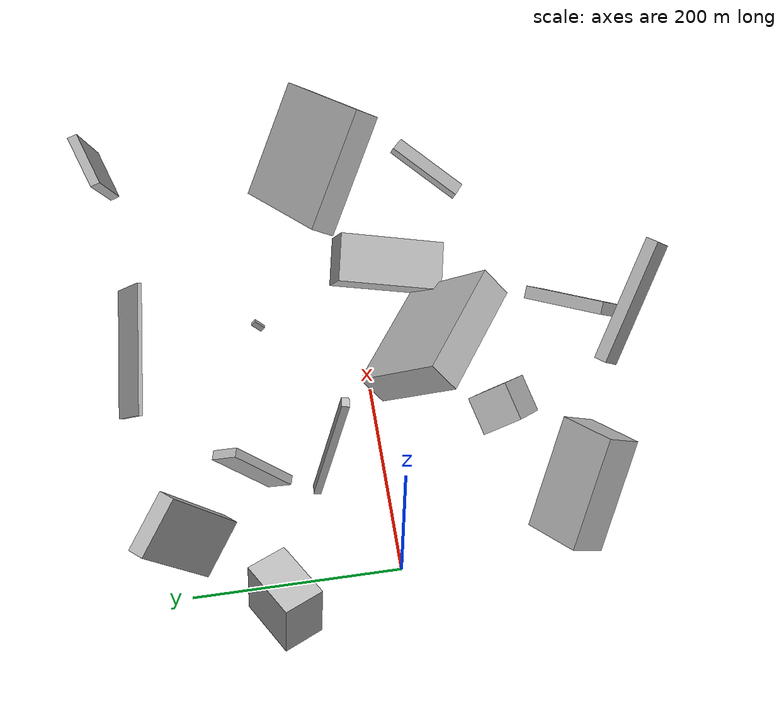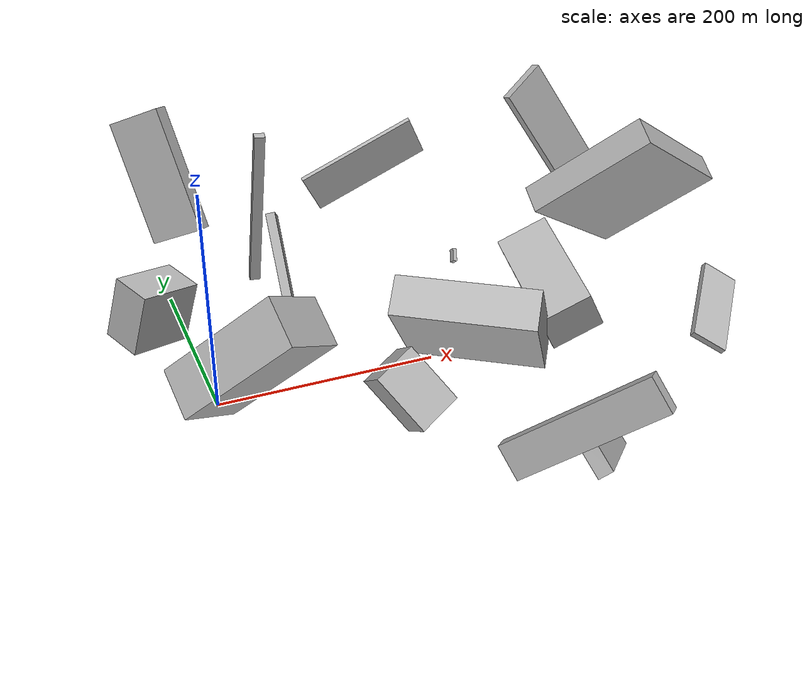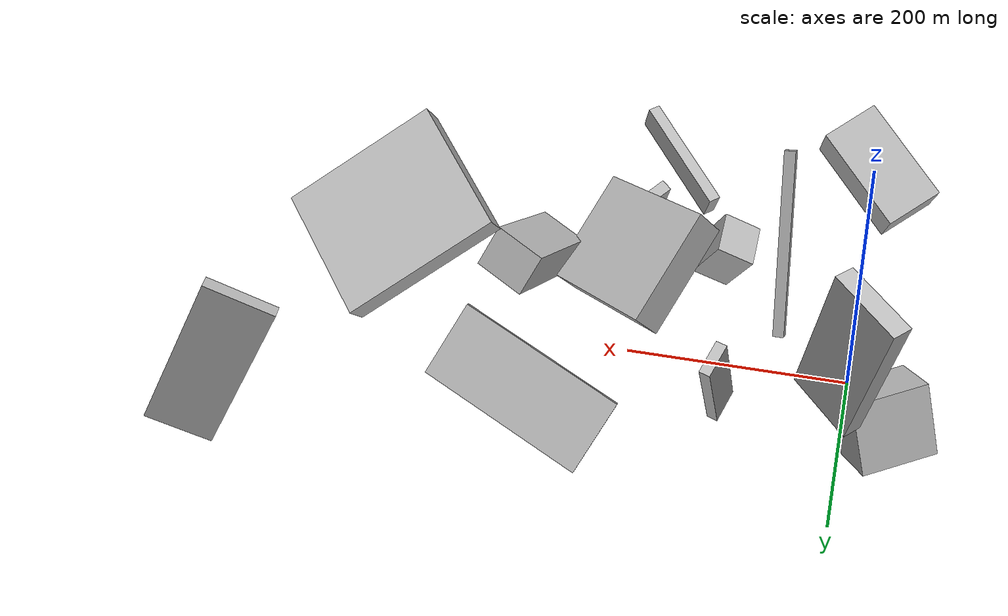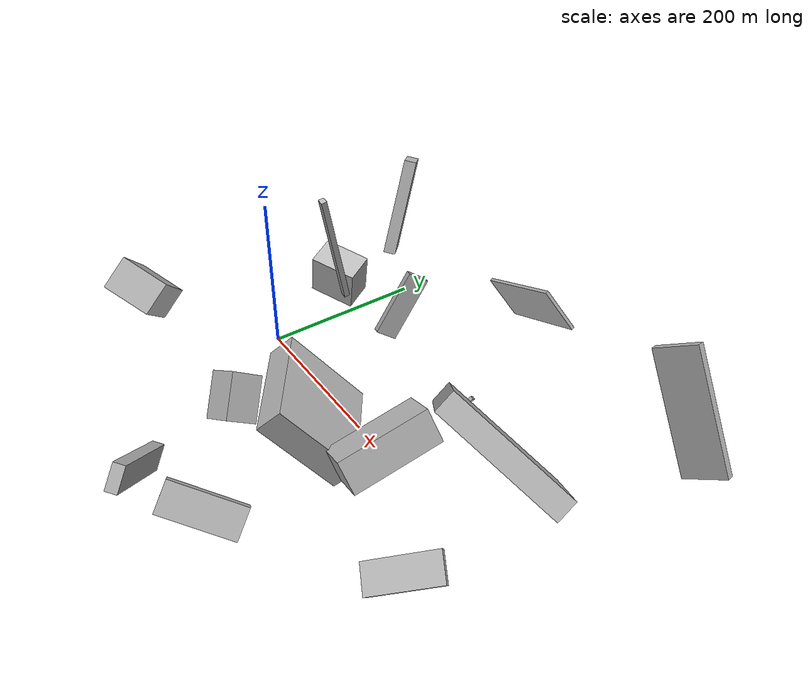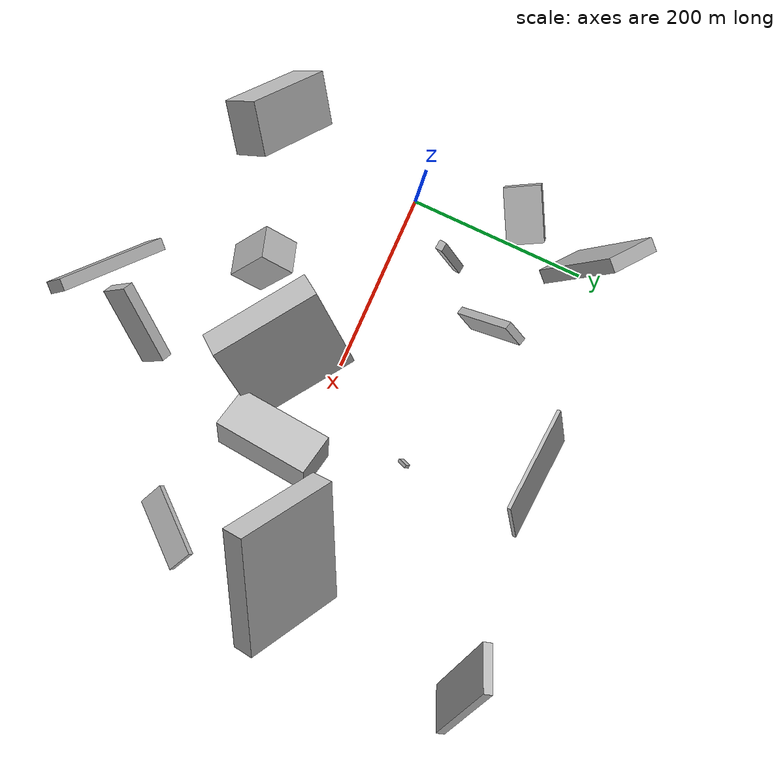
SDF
<sdf version="1.6">
 <world name="default">
  <scene>
   <sky><clouds><speed>12</speed></clouds></sky>
   <ambient>0.4 0.4 0.4 1</ambient>
   <background>0.7 0.7 0.7 1</background>
   <shadows>1</shadows>
  </scene>
  <gravity>0 0 -9.8066</gravity>
  <magnetic_field>6e-06 2.3e-05 -4.2e-05</magnetic_field>
  <physics default="0" name="default_physics" type="ode">
   <ode>
    <solver>
     <type>quick</type>
     <iters>10</iters>
     <sor>1.0</sor>
     <use_dynamic_moi_rescaling>0</use_dynamic_moi_rescaling>
    </solver>
    <constraints>
     <cfm>0</cfm>
     <erp>0.2</erp>
     <contact_max_correcting_vel>100</contact_max_correcting_vel>
     <contact_surface_layer>0.001</contact_surface_layer>
    </constraints>
   </ode>
   <max_step_size>0.004</max_step_size>
   <real_time_factor>1</real_time_factor>
   <real_time_update_rate>250</real_time_update_rate>
  </physics>
  <light name="sun" type="directional">
   <pose>0 0 10 0 0 0</pose>
   <diffuse>0.8 0.8 0.8 1</diffuse>
   <specular>0.2 0.2 0.2 1</specular>
   <attenuation>
    <range>1000</range>
    <constant>0.9</constant>
    <linear>0.01</linear>
    <quadratic>0.001</quadratic>
   </attenuation>
   <direction>-0.5 0.1 -0.9</direction>
  </light>
  <model name="building_1">
   <static>0</static>
   <pose>204.14043015853375 -75.70156491375282 58.568096420017945 0.8291711155265199 -0.0013921967810273743 2.5344470919243784</pose>
   <link name="link">
    <gravity>0</gravity>
    <pose>0 0 17.5 0 0 0</pose>
    <collision name="collision"><geometry><box><size>123 113 35</size></box></geometry></collision>
    <visual name="visual">
     <cast_shadows>0</cast_shadows>
     <geometry><box><size>123 113 35</size></box></geometry>
     <material>
      <script>
       <uri>model://HANNAS_wall/materials/scripts</uri>
       <uri>model://HANNAS_wall/materials/textures</uri>
       <name>vrc/HANNAS_wall</name>
      </script>
     </material>
    </visual>
   </link>
  </model>
  <model name="building_2">
   <static>0</static>
   <pose>-56.659333316425545 99.01511108490847 47.59182302813656 1.7559950708157446 -0.1806291035761957 2.0482183456998158</pose>
   <link name="link">
    <gravity>0</gravity>
    <pose>0 0 30.5 0 0 0</pose>
    <collision name="collision"><geometry><box><size>40 59 61</size></box></geometry></collision>
    <visual name="visual">
     <cast_shadows>0</cast_shadows>
     <geometry><box><size>40 59 61</size></box></geometry>
     <material>
      <script>
       <uri>model://HANNAS_wall/materials/scripts</uri>
       <uri>model://HANNAS_wall/materials/textures</uri>
       <name>vrc/HANNAS_wall</name>
      </script>
     </material>
    </visual>
   </link>
  </model>
  <model name="building_3">
   <static>0</static>
   <pose>435.25956950960267 248.62683175987874 78.81287225017748 0.3821168572302013 -1.0090850995319394 3.070939687763063</pose>
   <link name="link">
    <gravity>0</gravity>
    <pose>0 0 27.0 0 0 0</pose>
    <collision name="collision"><geometry><box><size>150 10 54</size></box></geometry></collision>
    <visual name="visual">
     <cast_shadows>0</cast_shadows>
     <geometry><box><size>150 10 54</size></box></geometry>
     <material>
      <script>
       <uri>model://HANNAS_wall/materials/scripts</uri>
       <uri>model://HANNAS_wall/materials/textures</uri>
       <name>vrc/HANNAS_wall</name>
      </script>
     </material>
    </visual>
   </link>
  </model>
  <model name="building_4">
   <static>0</static>
   <pose>312.1764398356222 -28.154605188892106 56.861726530359064 0.2800785446277506 -0.4534596862805836 -0.20626044959716744</pose>
   <link name="link">
    <gravity>0</gravity>
    <pose>0 0 20.5 0 0 0</pose>
    <collision name="collision"><geometry><box><size>49 108 41</size></box></geometry></collision>
    <visual name="visual">
     <cast_shadows>0</cast_shadows>
     <geometry><box><size>49 108 41</size></box></geometry>
     <material>
      <script>
       <uri>model://HANNAS_wall/materials/scripts</uri>
       <uri>model://HANNAS_wall/materials/textures</uri>
       <name>vrc/HANNAS_wall</name>
      </script>
     </material>
    </visual>
   </link>
  </model>
  <model name="building_5">
   <static>0</static>
   <pose>115.02528096609865 -126.59237769143408 50.133321306078614 0.909817534632923 -0.7920977417328626 2.3852779328273606</pose>
   <link name="link">
    <gravity>0</gravity>
    <pose>0 0 19.0 0 0 0</pose>
    <collision name="collision"><geometry><box><size>55 41 38</size></box></geometry></collision>
    <visual name="visual">
     <cast_shadows>0</cast_shadows>
     <geometry><box><size>55 41 38</size></box></geometry>
     <material>
      <script>
       <uri>model://HANNAS_wall/materials/scripts</uri>
       <uri>model://HANNAS_wall/materials/textures</uri>
       <name>vrc/HANNAS_wall</name>
      </script>
     </material>
    </visual>
   </link>
  </model>
  <model name="building_6">
   <static>0</static>
   <pose>371.101168772386 60.274692876032944 87.93362766298453 -0.7669949724003836 -0.5445235523516863 -2.6793212279761236</pose>
   <link name="link">
    <gravity>0</gravity>
    <pose>0 0 63.0 0 0 0</pose>
    <collision name="collision"><geometry><box><size>150 26 126</size></box></geometry></collision>
    <visual name="visual">
     <cast_shadows>0</cast_shadows>
     <geometry><box><size>150 26 126</size></box></geometry>
     <material>
      <script>
       <uri>model://HANNAS_wall/materials/scripts</uri>
       <uri>model://HANNAS_wall/materials/textures</uri>
       <name>vrc/HANNAS_wall</name>
      </script>
     </material>
    </visual>
   </link>
  </model>
  <model name="building_7">
   <static>0</static>
   <pose>232.5647921094061 244.58545316105025 75.74410097293689 0.4920465719713173 0.4269239337766608 -1.4692745356923524</pose>
   <link name="link">
    <gravity>0</gravity>
    <pose>0 0 29.0 0 0 0</pose>
    <collision name="collision"><geometry><box><size>4 127 58</size></box></geometry></collision>
    <visual name="visual">
     <cast_shadows>0</cast_shadows>
     <geometry><box><size>4 127 58</size></box></geometry>
     <material>
      <script>
       <uri>model://HANNAS_wall/materials/scripts</uri>
       <uri>model://HANNAS_wall/materials/textures</uri>
       <name>vrc/HANNAS_wall</name>
      </script>
     </material>
    </visual>
   </link>
  </model>
  <model name="building_8">
   <static>0</static>
   <pose>-36.91140254702722 -138.47097337389485 110.3295229563181 0.608464042675369 -0.6805993475366559 1.7767084461870741</pose>
   <link name="link">
    <gravity>0</gravity>
    <pose>0 0 51.5 0 0 0</pose>
    <collision name="collision"><geometry><box><size>39 55 103</size></box></geometry></collision>
    <visual name="visual">
     <cast_shadows>0</cast_shadows>
     <geometry><box><size>39 55 103</size></box></geometry>
     <material>
      <script>
       <uri>model://HANNAS_wall/materials/scripts</uri>
       <uri>model://HANNAS_wall/materials/textures</uri>
       <name>vrc/HANNAS_wall</name>
      </script>
     </material>
    </visual>
   </link>
  </model>
  <model name="building_9">
   <static>0</static>
   <pose>57.286077937835756 71.5395064181807 78.5508321454647 -0.06248066016022503 0.19107309766205371 -1.6754256946370798</pose>
   <link name="link">
    <gravity>0</gravity>
    <pose>0 0 75.0 0 0 0</pose>
    <collision name="collision"><geometry><box><size>7 9 150</size></box></geometry></collision>
    <visual name="visual">
     <cast_shadows>0</cast_shadows>
     <geometry><box><size>7 9 150</size></box></geometry>
     <material>
      <script>
       <uri>model://HANNAS_wall/materials/scripts</uri>
       <uri>model://HANNAS_wall/materials/textures</uri>
       <name>vrc/HANNAS_wall</name>
      </script>
     </material>
    </visual>
   </link>
  </model>
  <model name="building_10">
   <static>0</static>
   <pose>165.99656960043822 -232.1708109930837 56.8500090912633 0.35793902874007283 -0.8868340388022911 2.0561713874911627</pose>
   <link name="link">
    <gravity>0</gravity>
    <pose>0 0 64.5 0 0 0</pose>
    <collision name="collision"><geometry><box><size>29 13 129</size></box></geometry></collision>
    <visual name="visual">
     <cast_shadows>0</cast_shadows>
     <geometry><box><size>29 13 129</size></box></geometry>
     <material>
      <script>
       <uri>model://HANNAS_wall/materials/scripts</uri>
       <uri>model://HANNAS_wall/materials/textures</uri>
       <name>vrc/HANNAS_wall</name>
      </script>
     </material>
    </visual>
   </link>
  </model>
  <model name="building_11">
   <static>0</static>
   <pose>100.97852219650724 139.4933611433089 54.31841651831619 -0.28598409024979626 -0.9681278882564707 1.5537991001746414</pose>
   <link name="link">
    <gravity>0</gravity>
    <pose>0 0 14.0 0 0 0</pose>
    <collision name="collision"><geometry><box><size>86 9 28</size></box></geometry></collision>
    <visual name="visual">
     <cast_shadows>0</cast_shadows>
     <geometry><box><size>86 9 28</size></box></geometry>
     <material>
      <script>
       <uri>model://HANNAS_wall/materials/scripts</uri>
       <uri>model://HANNAS_wall/materials/textures</uri>
       <name>vrc/HANNAS_wall</name>
      </script>
     </material>
    </visual>
   </link>
  </model>
  <model name="building_12">
   <static>0</static>
   <pose>267.21681379451337 106.40363001130144 41.62947992190867 2.063378222266069 -0.7380957224813937 1.232730133649085</pose>
   <link name="link">
    <gravity>0</gravity>
    <pose>0 0 2.0 0 0 0</pose>
    <collision name="collision"><geometry><box><size>13 6 4</size></box></geometry></collision>
    <visual name="visual">
     <cast_shadows>0</cast_shadows>
     <geometry><box><size>13 6 4</size></box></geometry>
     <material>
      <script>
       <uri>model://HANNAS_wall/materials/scripts</uri>
       <uri>model://HANNAS_wall/materials/textures</uri>
       <name>vrc/HANNAS_wall</name>
      </script>
     </material>
    </visual>
   </link>
  </model>
  <model name="building_13">
   <static>0</static>
   <pose>245.02575877440975 -216.45255488069486 38.59079486847699 0.5837759477784659 -0.8113407690586478 2.010383418986116</pose>
   <link name="link">
    <gravity>0</gravity>
    <pose>0 0 6.5 0 0 0</pose>
    <collision name="collision"><geometry><box><size>38 90 13</size></box></geometry></collision>
    <visual name="visual">
     <cast_shadows>0</cast_shadows>
     <geometry><box><size>38 90 13</size></box></geometry>
     <material>
      <script>
       <uri>model://HANNAS_wall/materials/scripts</uri>
       <uri>model://HANNAS_wall/materials/textures</uri>
       <name>vrc/HANNAS_wall</name>
      </script>
     </material>
    </visual>
   </link>
  </model>
  <model name="building_14">
   <static>0</static>
   <pose>435.6261196526984 -95.78321776268005 50.73634300682464 0.5847361730264315 -0.3548130596652474 0.8853186088384459</pose>
   <link name="link">
    <gravity>0</gravity>
    <pose>0 0 3.0 0 0 0</pose>
    <collision name="collision"><geometry><box><size>84 34 6</size></box></geometry></collision>
    <visual name="visual">
     <cast_shadows>0</cast_shadows>
     <geometry><box><size>84 34 6</size></box></geometry>
     <material>
      <script>
       <uri>model://HANNAS_wall/materials/scripts</uri>
       <uri>model://HANNAS_wall/materials/textures</uri>
       <name>vrc/HANNAS_wall</name>
      </script>
     </material>
    </visual>
   </link>
  </model>
  <model name="building_15">
   <static>0</static>
   <pose>12.0431457999529 169.0807237000166 84.5939047670851 -0.19482705391738653 -0.40140894116216336 -0.6701280438338585</pose>
   <link name="link">
    <gravity>0</gravity>
    <pose>0 0 60.0 0 0 0</pose>
    <collision name="collision"><geometry><box><size>55 15 120</size></box></geometry></collision>
    <visual name="visual">
     <cast_shadows>0</cast_shadows>
     <geometry><box><size>55 15 120</size></box></geometry>
     <material>
      <script>
       <uri>model://HANNAS_wall/materials/scripts</uri>
       <uri>model://HANNAS_wall/materials/textures</uri>
       <name>vrc/HANNAS_wall</name>
      </script>
     </material>
    </visual>
   </link>
  </model>
 </world>
</sdf>
